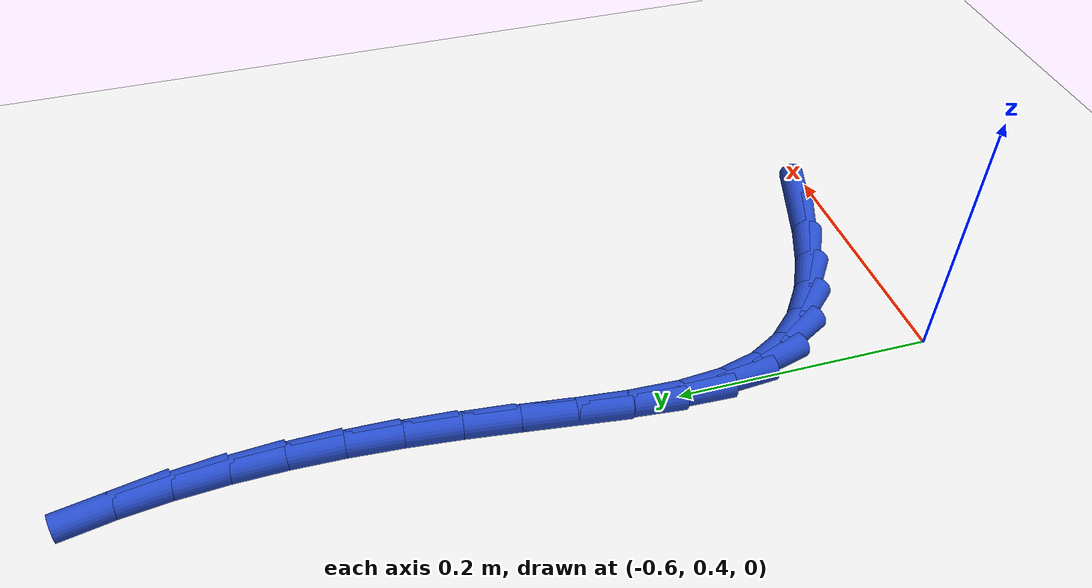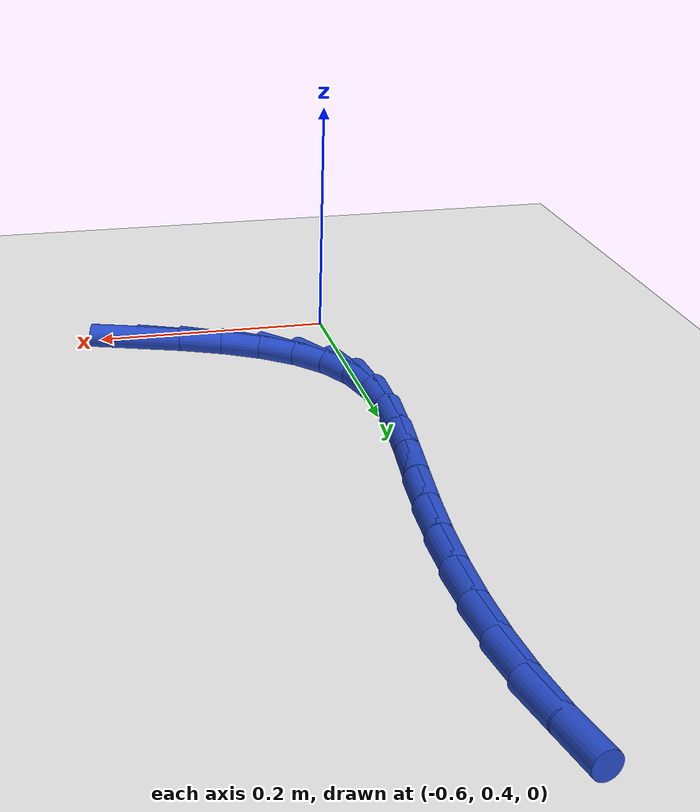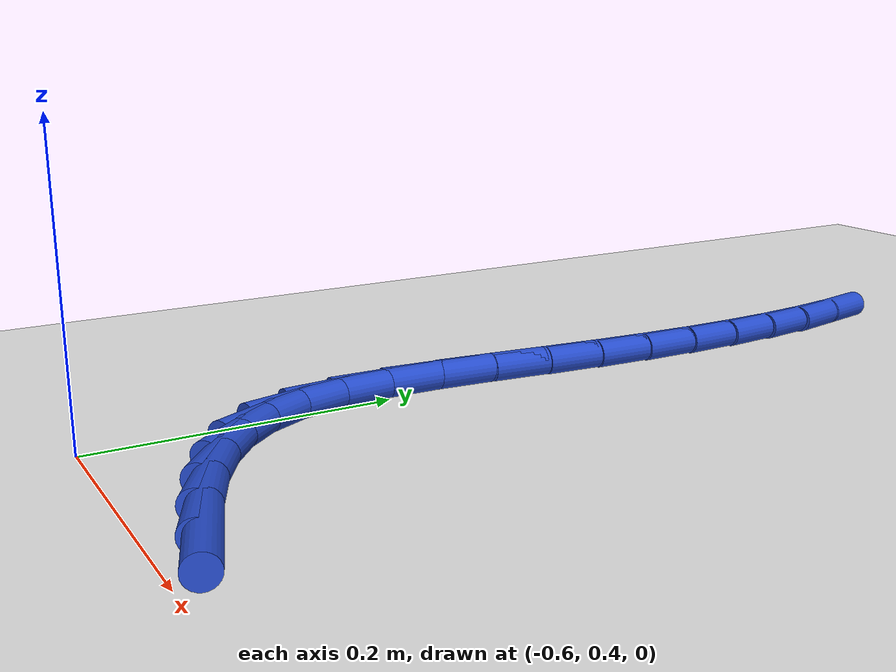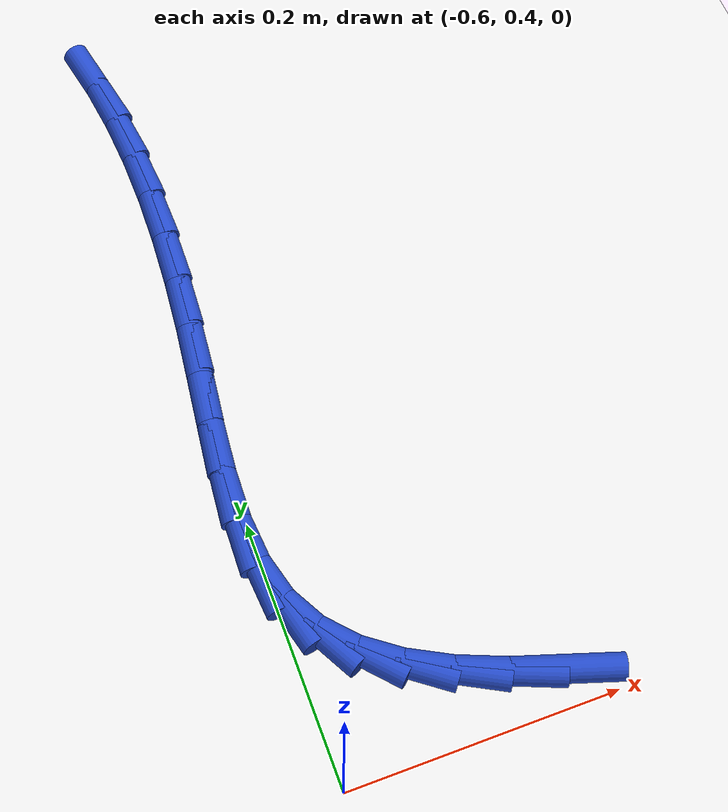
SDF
<sdf version="1.6">
 <world name="default">
  <model name="ground_plane">
   <static>1</static>
   <link name="link">
    <collision name="collision">
     <geometry><plane><normal>0 0 1</normal><size>100 100</size></plane></geometry>
     <surface><friction><ode><mu>100</mu><mu2>50</mu2></ode></friction></surface>
    </collision>
    <visual name="visual">
     <cast_shadows>0</cast_shadows>
     <geometry><plane><normal>0 0 1</normal><size>100 100</size></plane></geometry>
     <material>
      <script><uri>file://media/materials/scripts/gazebo.material</uri><name>Gazebo/WhiteGlow</name></script>
     </material>
    </visual>
   </link>
  </model>
  <model name="line">
   <link name="link_18">
    <pose>-0.4297252978159968 0.4235199498394611 0.01 0 1.57 -0.31256614276419575</pose>
    <collision name="collision">
     <geometry><cylinder><radius>0.01</radius><length>0.08</length></cylinder></geometry>
    </collision>
    <visual name="visual">
     <material>
      <script><name>Gazebo/Blue</name><uri>file://media/materials/scripts/gazebo.material</uri></script>
     </material>
     <geometry><cylinder><radius>0.01</radius><length>0.08</length></cylinder></geometry>
    </visual>
   </link>
   <link name="link_19">
    <pose>-0.4675163011991292 0.43573246377342223 0.01 0 1.57 -0.38603078774481725</pose>
    <collision name="collision">
     <geometry><cylinder><radius>0.01</radius><length>0.08</length></cylinder></geometry>
    </collision>
    <visual name="visual">
     <material>
      <script><name>Gazebo/Blue</name><uri>file://media/materials/scripts/gazebo.material</uri></script>
     </material>
     <geometry><cylinder><radius>0.01</radius><length>0.08</length></cylinder></geometry>
    </visual>
   </link>
   <link name="link_20">
    <pose>-0.50221087715652 0.44983312263943875 0.01 0 1.57 -0.4921025089945729</pose>
    <collision name="collision">
     <geometry><cylinder><radius>0.01</radius><length>0.08</length></cylinder></geometry>
    </collision>
    <visual name="visual">
     <material>
      <script><name>Gazebo/Blue</name><uri>file://media/materials/scripts/gazebo.material</uri></script>
     </material>
     <geometry><cylinder><radius>0.01</radius><length>0.08</length></cylinder></geometry>
    </visual>
   </link>
   <link name="link_21">
    <pose>-0.533035526194731 0.4663579661268493 0.01 0 1.57 -0.6398033910160179</pose>
    <collision name="collision">
     <geometry><cylinder><radius>0.01</radius><length>0.08</length></cylinder></geometry>
    </collision>
    <visual name="visual">
     <material>
      <script><name>Gazebo/Blue</name><uri>file://media/materials/scripts/gazebo.material</uri></script>
     </material>
     <geometry><cylinder><radius>0.01</radius><length>0.08</length></cylinder></geometry>
    </visual>
   </link>
   <link name="link_22">
    <pose>-0.5592167488203241 0.48584303392499284 0.01 0 1.57 -0.8360349913155304</pose>
    <collision name="collision">
     <geometry><cylinder><radius>0.01</radius><length>0.08</length></cylinder></geometry>
    </collision>
    <visual name="visual">
     <material>
      <script><name>Gazebo/Blue</name><uri>file://media/materials/scripts/gazebo.material</uri></script>
     </material>
     <geometry><cylinder><radius>0.01</radius><length>0.08</length></cylinder></geometry>
    </visual>
   </link>
   <link name="link_23">
    <pose>-0.5799810455398614 0.5088243657232083 0.01 0 1.57 -1.0760244658184988</pose>
    <collision name="collision">
     <geometry><cylinder><radius>0.01</radius><length>0.08</length></cylinder></geometry>
    </collision>
    <visual name="visual">
     <material>
      <script><name>Gazebo/Blue</name><uri>file://media/materials/scripts/gazebo.material</uri></script>
     </material>
     <geometry><cylinder><radius>0.01</radius><length>0.08</length></cylinder></geometry>
    </visual>
   </link>
   <link name="link_24">
    <pose>-0.5945555756327332 0.5358375825081924 0.01 0 1.57 -1.3168480507175693</pose>
    <collision name="collision">
     <geometry><cylinder><radius>0.01</radius><length>0.08</length></cylinder></geometry>
    </collision>
    <visual name="visual">
     <material>
      <script><name>Gazebo/Blue</name><uri>file://media/materials/scripts/gazebo.material</uri></script>
     </material>
     <geometry><cylinder><radius>0.01</radius><length>0.08</length></cylinder></geometry>
    </visual>
   </link>
   <link name="link_25">
    <pose>-0.6026695847474297 0.5670991893587395 0.01 0 1.57 -1.4911927266280636</pose>
    <collision name="collision">
     <geometry><cylinder><radius>0.01</radius><length>0.08</length></cylinder></geometry>
    </collision>
    <visual name="visual">
     <material>
      <script><name>Gazebo/Blue</name><uri>file://media/materials/scripts/gazebo.material</uri></script>
     </material>
     <geometry><cylinder><radius>0.01</radius><length>0.08</length></cylinder></geometry>
    </visual>
   </link>
   <link name="link_26">
    <pose>-0.6054487633783233 0.6019381393461524 0.01 0 1.57 1.5391746137286253</pose>
    <collision name="collision">
     <geometry><cylinder><radius>0.01</radius><length>0.08</length></cylinder></geometry>
    </collision>
    <visual name="visual">
     <material>
      <script><name>Gazebo/Blue</name><uri>file://media/materials/scripts/gazebo.material</uri></script>
     </material>
     <geometry><cylinder><radius>0.01</radius><length>0.08</length></cylinder></geometry>
    </visual>
   </link>
   <link name="link_27">
    <pose>-0.6042596380090349 0.6395303150739925 0.01 0 1.57 1.475168354284038</pose>
    <collision name="collision">
     <geometry><cylinder><radius>0.01</radius><length>0.08</length></cylinder></geometry>
    </collision>
    <visual name="visual">
     <material>
      <script><name>Gazebo/Blue</name><uri>file://media/materials/scripts/gazebo.material</uri></script>
     </material>
     <geometry><cylinder><radius>0.01</radius><length>0.08</length></cylinder></geometry>
    </visual>
   </link>
   <link name="link_28">
    <pose>-0.6004687351231859 0.679051599145821 0.01 0 1.57 1.4477049610633939</pose>
    <collision name="collision">
     <geometry><cylinder><radius>0.01</radius><length>0.08</length></cylinder></geometry>
    </collision>
    <visual name="visual">
     <material>
      <script><name>Gazebo/Blue</name><uri>file://media/materials/scripts/gazebo.material</uri></script>
     </material>
     <geometry><cylinder><radius>0.01</radius><length>0.08</length></cylinder></geometry>
    </visual>
   </link>
   <link name="link_29">
    <pose>-0.5954425812043965 0.719677874165199 0.01 0 1.57 1.4516589366826929</pose>
    <collision name="collision">
     <geometry><cylinder><radius>0.01</radius><length>0.08</length></cylinder></geometry>
    </collision>
    <visual name="visual">
     <material>
      <script><name>Gazebo/Blue</name><uri>file://media/materials/scripts/gazebo.material</uri></script>
     </material>
     <geometry><cylinder><radius>0.01</radius><length>0.08</length></cylinder></geometry>
    </visual>
   </link>
   <link name="link_30">
    <pose>-0.590545665910042 0.7605863149088202 0.01 0 1.57 1.4786295311218423</pose>
    <collision name="collision">
     <geometry><cylinder><radius>0.01</radius><length>0.08</length></cylinder></geometry>
    </collision>
    <visual name="visual">
     <material>
      <script><name>Gazebo/Blue</name><uri>file://media/materials/scripts/gazebo.material</uri></script>
     </material>
     <geometry><cylinder><radius>0.01</radius><length>0.08</length></cylinder></geometry>
    </visual>
   </link>
   <link name="link_31">
    <pose>-0.5867940977808205 0.8011751109400964 0.01 0 1.57 1.5128110846705394</pose>
    <collision name="collision">
     <geometry><cylinder><radius>0.01</radius><length>0.08</length></cylinder></geometry>
    </collision>
    <visual name="visual">
     <material>
      <script><name>Gazebo/Blue</name><uri>file://media/materials/scripts/gazebo.material</uri></script>
     </material>
     <geometry><cylinder><radius>0.01</radius><length>0.08</length></cylinder></geometry>
    </visual>
   </link>
   <link name="link_32">
    <pose>-0.5844641498184621 0.8413118073242912 0.01 0 1.57 1.5524554792189942</pose>
    <collision name="collision">
     <geometry><cylinder><radius>0.01</radius><length>0.08</length></cylinder></geometry>
    </collision>
    <visual name="visual">
     <material>
      <script><name>Gazebo/Blue</name><uri>file://media/materials/scripts/gazebo.material</uri></script>
     </material>
     <geometry><cylinder><radius>0.01</radius><length>0.08</length></cylinder></geometry>
    </visual>
   </link>
   <link name="link_33">
    <pose>-0.5837375484400176 0.8809239299701968 0.01 0 1.57 -1.543673168519768</pose>
    <collision name="collision">
     <geometry><cylinder><radius>0.01</radius><length>0.08</length></cylinder></geometry>
    </collision>
    <visual name="visual">
     <material>
      <script><name>Gazebo/Blue</name><uri>file://media/materials/scripts/gazebo.material</uri></script>
     </material>
     <geometry><cylinder><radius>0.01</radius><length>0.08</length></cylinder></geometry>
    </visual>
   </link>
   <link name="link_34">
    <pose>-0.5847960200625375 0.9199390047866061 0.01 0 1.57 -1.4920644451887517</pose>
    <collision name="collision">
     <geometry><cylinder><radius>0.01</radius><length>0.08</length></cylinder></geometry>
    </collision>
    <visual name="visual">
     <material>
      <script><name>Gazebo/Blue</name><uri>file://media/materials/scripts/gazebo.material</uri></script>
     </material>
     <geometry><cylinder><radius>0.01</radius><length>0.08</length></cylinder></geometry>
    </visual>
   </link>
   <link name="link_35">
    <pose>-0.587821291103073 0.9582845576823119 0.01 0 1.57 -1.4340668323699233</pose>
    <collision name="collision">
     <geometry><cylinder><radius>0.01</radius><length>0.08</length></cylinder></geometry>
    </collision>
    <visual name="visual">
     <material>
      <script><name>Gazebo/Blue</name><uri>file://media/materials/scripts/gazebo.material</uri></script>
     </material>
     <geometry><cylinder><radius>0.01</radius><length>0.08</length></cylinder></geometry>
    </visual>
   </link>
   <link name="link_36">
    <pose>-0.5929950879786746 0.9958881145661065 0.01 0 1.57 -1.3695817161351025</pose>
    <collision name="collision">
     <geometry><cylinder><radius>0.01</radius><length>0.08</length></cylinder></geometry>
    </collision>
    <visual name="visual">
     <material>
      <script><name>Gazebo/Blue</name><uri>file://media/materials/scripts/gazebo.material</uri></script>
     </material>
     <geometry><cylinder><radius>0.01</radius><length>0.08</length></cylinder></geometry>
    </visual>
   </link>
  </model>
 </world>
</sdf>
